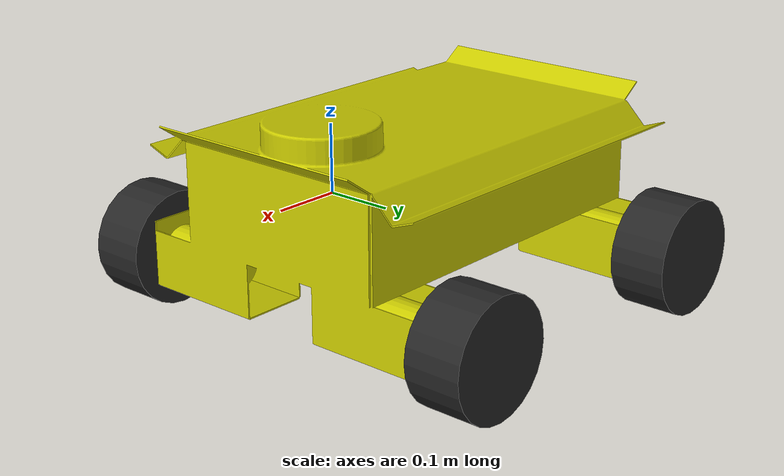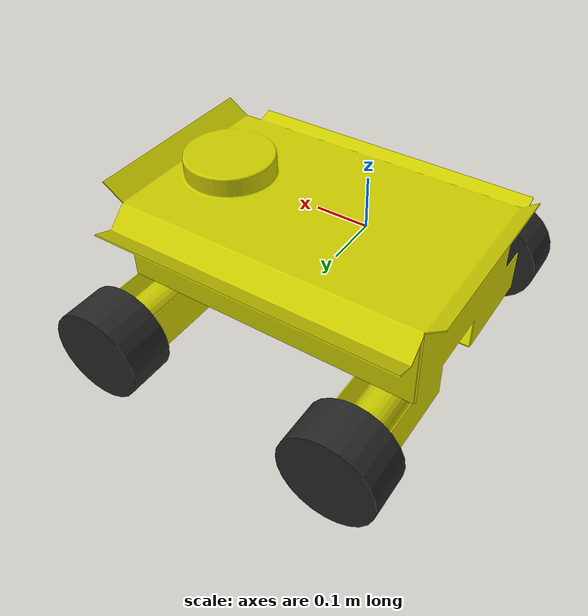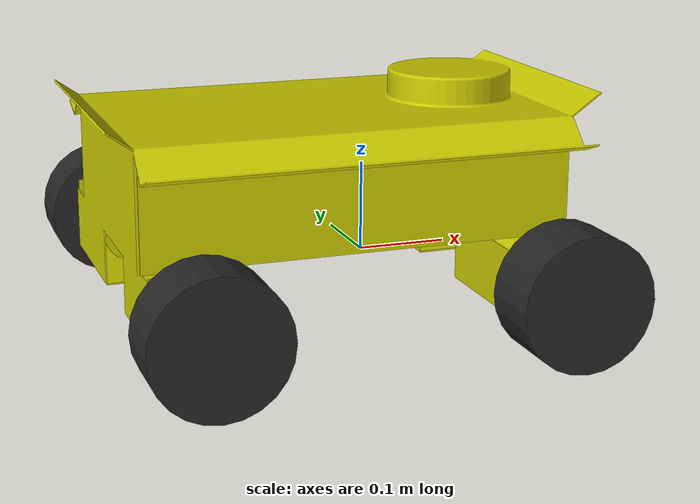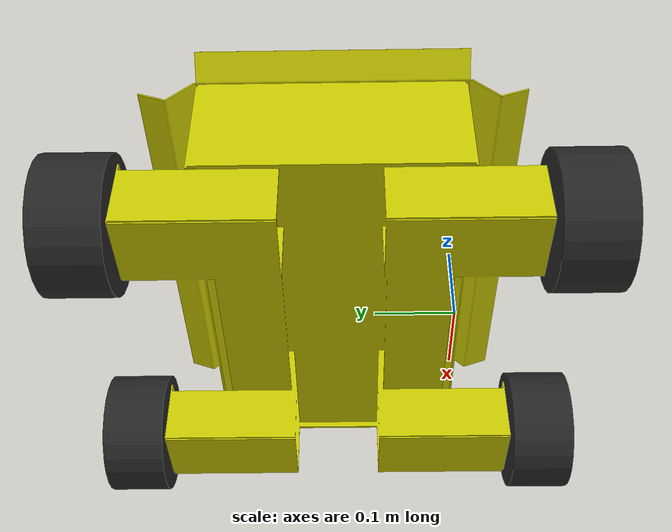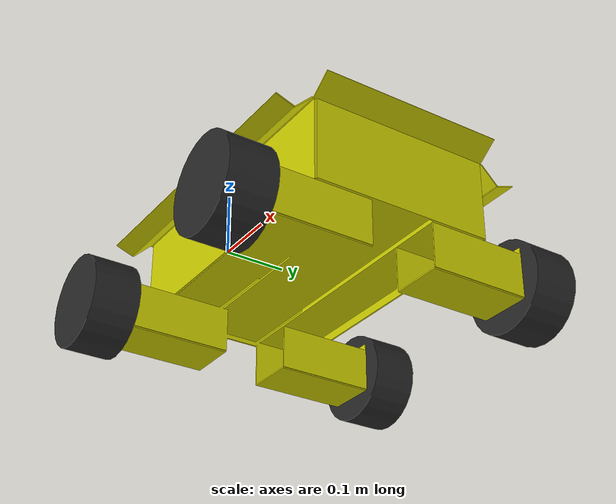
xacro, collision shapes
<?xml version="1.0" encoding="utf-8"?>
<robot name="proyecto" xmlns:xacro="http://www.ros.org/wiki/xacro">

  <xacro:property name="wheel_x" value="0.206" />
  <xacro:property name="front_wheel_y" value="-0.13662" />
  <xacro:property name="back_wheel_y" value="0.40485" />
  <xacro:property name="wheel_z" value="-0.041" />
  <xacro:property name="wheel_radius" value="0.0785" />
  <xacro:property name="wheel_width" value="0.078" />
  <xacro:property name="pi" value="3.14159265358979323846" />

  <material name="dark_grey"><color rgba="0.2 0.2 0.2 1.0" /></material>
  <material name="light_grey"><color rgba="0.4 0.4 0.4 1.0" /></material>
  <material name="yellow"><color rgba="0.8 0.8 0.0 1.0" /></material>
  <material name="black"><color rgba="0.15 0.15 0.15 1.0" /></material>

  <xacro:macro name="wheel" params="suffix *joint_pose">
    <link name="rueda_${suffix}">
        <inertial>
          <origin xyz="-5.707782267661E-07 1.62246123321108E-07 -0.0158002809636204" rpy="0 0 0"/>
          <mass value="1.1617081622077"/>
          <inertia ixx="0.00236389228715147" ixy="4.31489359287888E-09" ixz="-1.0352494720813E-08"
                  iyy="0.00236389275249923" iyz="-3.84382849696802E-10" izz="0.00380474886030968"/>
        </inertial>
      <visual>
        <origin xyz="0 0 0" rpy="0 0 0"/>
          <geometry>
            <mesh filename="package://proyecto/meshes/rueda_1.STL"/>
          </geometry>
          <material name="black" />
      </visual>
      <collision>
        <origin xyz="0 0 -0.015" rpy="0 0 0"/>
          <geometry>
             <cylinder radius="${wheel_radius}" length="${wheel_width}"/>
          </geometry>
      </collision>
    </link>

    <joint name="motor_${suffix}" type="continuous">
      <parent link="base_link"/>
      <child link="rueda_${suffix}"/>
      <xacro:insert_block name="joint_pose" />
      <axis xyz="0 0 1"/>
    </joint>

    <transmission name="tran_${suffix}">
      <type>transmission_interface/SimpleTransmission</type>
      <joint name="motor_${suffix}">
        <hardwareInterface>hardware_interface/VelocityJointInterface</hardwareInterface>
      </joint>
      <actuator name="actuator_${suffix}">
        <hardwareInterface>hardware_interface/VelocityJointInterface</hardwareInterface>
        <mechanicalReduction>1</mechanicalReduction>
      </actuator>
    </transmission>
  </xacro:macro>

  <xacro:wheel suffix="1">
    <origin xyz="${-wheel_x} ${front_wheel_y} ${wheel_z}" rpy="${pi/2} 0 0" />
  </xacro:wheel>

  <xacro:wheel suffix="2">
    <origin xyz="${wheel_x} ${front_wheel_y} ${wheel_z}" rpy="${pi/2} 0 0" />
  </xacro:wheel>

  <xacro:wheel suffix="3">
    <origin xyz="${wheel_x} ${back_wheel_y} ${wheel_z}" rpy="${pi/2} 0 0" />
  </xacro:wheel>

  <xacro:wheel suffix="4">
    <origin xyz="${-wheel_x} ${back_wheel_y} ${wheel_z}" rpy="${pi/2} 0 0" />
  </xacro:wheel>

  <link name="odom"/>

  <link name="base_link">
    <inertial>
      <origin xyz="0.0238551640441538 0.0295955080939407 -0.150383488449588" rpy="0 0 0"/>
      <mass value="4.58423641056187"/>
      <inertia ixx="0.0171426025781744" ixy="-0.00117297644050985" ixz="-6.44110873168587E-07"
               iyy="0.0611975209416774" iyz="-1.44180477906026E-08" izz="0.047936942239142"/>
    </inertial>
    <visual>
      <origin xyz="0 0 0" rpy="0 0 0"/>
      <geometry>
        <mesh filename="package://proyecto/meshes/base_link.STL"/>
      </geometry>
      <material name="yellow" />
    </visual>
    <collision>
      <origin xyz="0 0 0" rpy="0 0 0"/>
      <geometry>
              <mesh filename="package://proyecto/meshes/base_link.STL"/>
      </geometry>
    </collision>
  </link>

  <joint name="dummy_joint" type="fixed">
    <parent link="odom"/>
    <child link="base_link"/>
  </joint>

 <gazebo>
    <plugin name="gazebo_ros_control" filename="libgazebo_ros_control.so">
    </plugin>
  </gazebo>

</robot>
